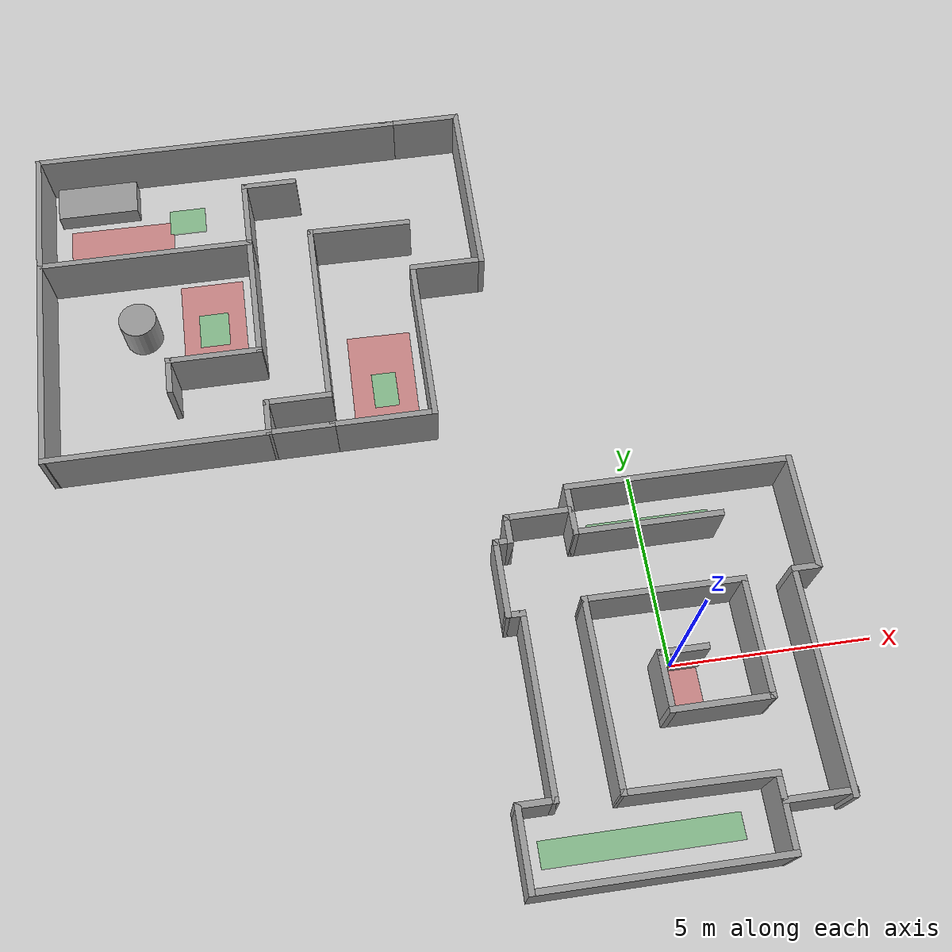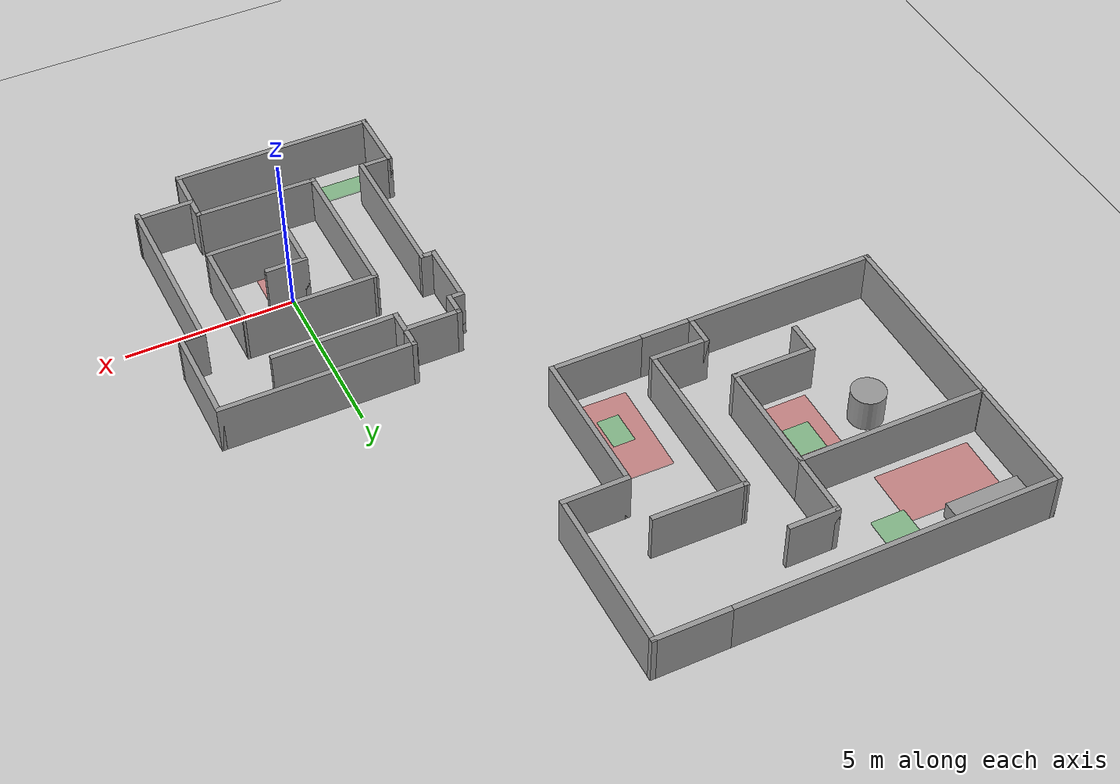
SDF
<sdf version="1.7">
 <world name="default">
  <model name="ground_plane">
   <static>1</static>
   <link name="link">
    <collision name="collision">
     <geometry><plane><normal>0 0 1</normal><size>100 100</size></plane></geometry>
     <surface>
      <contact><collide_bitmask>65535</collide_bitmask></contact>
      <friction><ode><mu>100</mu><mu2>50</mu2></ode></friction>
     </surface>
    </collision>
    <visual name="visual">
     <cast_shadows>0</cast_shadows>
     <geometry><plane><normal>0 0 1</normal><size>100 100</size></plane></geometry>
     <material>
      <script><uri>file://media/materials/scripts/gazebo.material</uri><name>Gazebo/Grey</name></script>
     </material>
    </visual>
   </link>
  </model>
  <model name="map_1">
   <stepLimit>500</stepLimit>
   <pose>-0.281 -0.221428 0 0 -0 0</pose>
   <link name="Wall_1">
    <collision name="Wall_1_Collision">
     <geometry><box><size>4.5 0.15 1.5</size></box></geometry>
     <pose>0 0 0.75 0 -0 0</pose>
    </collision>
    <visual name="Wall_1_Visual">
     <pose>0 0 0.75 0 -0 0</pose>
     <geometry><box><size>4.5 0.15 1.5</size></box></geometry>
     <material>
      <script><uri>file://media/materials/scripts/gazebo.material</uri><name>Gazebo/Grey</name></script>
      <ambient>1 1 1 1</ambient>
     </material>
     <meta><layer>0</layer></meta>
    </visual>
    <pose>-3.175 -0.599572 0 0 -0 1.5708</pose>
   </link>
   <link name="Wall_16">
    <collision name="Wall_16_Collision">
     <geometry><box><size>1.75 0.15 1.5</size></box></geometry>
     <pose>0 0 0.75 0 -0 0</pose>
    </collision>
    <visual name="Wall_16_Visual">
     <pose>0 0 0.75 0 -0 0</pose>
     <geometry><box><size>1.75 0.15 1.5</size></box></geometry>
     <material>
      <script><uri>file://media/materials/scripts/gazebo.material</uri><name>Gazebo/Grey</name></script>
      <ambient>1 1 1 1</ambient>
     </material>
     <meta><layer>0</layer></meta>
    </visual>
    <pose>2.645 -3.48157 0 0 -0 3.14159</pose>
   </link>
   <link name="Wall_2">
    <collision name="Wall_2_Collision">
     <geometry><box><size>0.5 0.15 1.5</size></box></geometry>
     <pose>0 0 0.75 0 -0 0</pose>
    </collision>
    <visual name="Wall_2_Visual">
     <pose>0 0 0.75 0 -0 0</pose>
     <geometry><box><size>0.5 0.15 1.5</size></box></geometry>
     <material>
      <script><uri>file://media/materials/scripts/gazebo.material</uri><name>Gazebo/Grey</name></script>
      <ambient>1 1 1 1</ambient>
     </material>
     <meta><layer>0</layer></meta>
    </visual>
    <pose>-3.35 1.57543 0 0 -0 3.14159</pose>
   </link>
   <link name="Wall_25">
    <collision name="Wall_25_Collision">
     <geometry><box><size>4.00007 0.15 1.5</size></box></geometry>
     <pose>0 0 0.75 0 -0 0</pose>
    </collision>
    <visual name="Wall_25_Visual">
     <pose>0 0 0.75 0 -0 0</pose>
     <geometry><box><size>4.00007 0.15 1.5</size></box></geometry>
     <material>
      <script><uri>file://media/materials/scripts/gazebo.material</uri><name>Gazebo/Grey</name></script>
      <ambient>1 1 1 1</ambient>
     </material>
     <meta><layer>0</layer></meta>
    </visual>
    <pose>0.249 1.70643 0 0 -0 -0.006234</pose>
   </link>
   <link name="Wall_26">
    <collision name="Wall_26_Collision">
     <geometry><box><size>3 0.15 1.5</size></box></geometry>
     <pose>0 0 0.75 0 -0 0</pose>
    </collision>
    <visual name="Wall_26_Visual">
     <pose>0 0 0.75 0 -0 0</pose>
     <geometry><box><size>3 0.15 1.5</size></box></geometry>
     <material>
      <script><uri>file://media/materials/scripts/gazebo.material</uri><name>Gazebo/Grey</name></script>
      <ambient>1 1 1 1</ambient>
     </material>
     <meta><layer>0</layer></meta>
    </visual>
    <pose>2.174 0.269428 0 0 -0 -1.5708</pose>
   </link>
   <link name="Wall_27">
    <collision name="Wall_27_Collision">
     <geometry><box><size>2.5 0.15 1.5</size></box></geometry>
     <pose>0 0 0.75 0 -0 0</pose>
    </collision>
    <visual name="Wall_27_Visual">
     <pose>0 0 0.75 0 -0 0</pose>
     <geometry><box><size>2.5 0.15 1.5</size></box></geometry>
     <material>
      <script><uri>file://media/materials/scripts/gazebo.material</uri><name>Gazebo/Grey</name></script>
      <ambient>1 1 1 1</ambient>
     </material>
     <meta><layer>0</layer></meta>
    </visual>
    <pose>0.999 -1.15557 0 0 -0 3.14159</pose>
   </link>
   <link name="Wall_3">
    <collision name="Wall_3_Collision">
     <geometry><box><size>2 0.15 1.5</size></box></geometry>
     <pose>0 0 0.75 0 -0 0</pose>
    </collision>
    <visual name="Wall_3_Visual">
     <pose>0 0 0.75 0 -0 0</pose>
     <geometry><box><size>2 0.15 1.5</size></box></geometry>
     <material>
      <script><uri>file://media/materials/scripts/gazebo.material</uri><name>Gazebo/Grey</name></script>
      <ambient>1 1 1 1</ambient>
     </material>
     <meta><layer>0</layer></meta>
    </visual>
    <pose>-3.525 2.50043 0 0 -0 1.5708</pose>
   </link>
   <link name="Wall_31">
    <collision name="Wall_31_Collision">
     <geometry><box><size>3.64467 0.15 1.5</size></box></geometry>
     <pose>0 0 0.75 0 -0 0</pose>
    </collision>
    <visual name="Wall_31_Visual">
     <pose>0 0 0.75 0 -0 0</pose>
     <geometry><box><size>3.64467 0.15 1.5</size></box></geometry>
     <material>
      <script><uri>file://media/materials/scripts/gazebo.material</uri><name>Gazebo/Grey</name></script>
      <ambient>1 1 1 1</ambient>
     </material>
     <meta><layer>0</layer></meta>
    </visual>
    <pose>0.0975 -2.85407 0 0 -0 -0.015735</pose>
   </link>
   <link name="Wall_33">
    <collision name="Wall_33_Collision">
     <geometry><box><size>1 0.15 1.5</size></box></geometry>
     <pose>0 0 0.75 0 -0 0</pose>
    </collision>
    <visual name="Wall_33_Visual">
     <pose>0 0 0.75 0 -0 0</pose>
     <geometry><box><size>1 0.15 1.5</size></box></geometry>
     <material>
      <script><uri>file://media/materials/scripts/gazebo.material</uri><name>Gazebo/Grey</name></script>
      <ambient>1 1 1 1</ambient>
     </material>
     <meta><layer>0</layer></meta>
    </visual>
    <pose>-3.6 -2.77457 0 0 -0 3.14159</pose>
   </link>
   <link name="Wall_34">
    <collision name="Wall_34_Collision">
     <geometry><box><size>2 0.15 1.5</size></box></geometry>
     <pose>0 0 0.75 0 -0 0</pose>
    </collision>
    <visual name="Wall_34_Visual">
     <pose>0 0 0.75 0 -0 0</pose>
     <geometry><box><size>2 0.15 1.5</size></box></geometry>
     <material>
      <script><uri>file://media/materials/scripts/gazebo.material</uri><name>Gazebo/Grey</name></script>
      <ambient>1 1 1 1</ambient>
     </material>
     <meta><layer>0</layer></meta>
    </visual>
    <pose>-4.025 -3.69957 0 0 -0 -1.5708</pose>
   </link>
   <link name="Wall_35">
    <collision name="Wall_35_Collision">
     <geometry><box><size>6 0.15 1.5</size></box></geometry>
     <pose>0 0 0.75 0 -0 0</pose>
    </collision>
    <visual name="Wall_35_Visual">
     <pose>0 0 0.75 0 -0 0</pose>
     <geometry><box><size>6 0.15 1.5</size></box></geometry>
     <material>
      <script><uri>file://media/materials/scripts/gazebo.material</uri><name>Gazebo/Grey</name></script>
      <ambient>1 1 1 1</ambient>
     </material>
     <meta><layer>0</layer></meta>
    </visual>
    <pose>-1.1 -4.62457 0 0 -0 0</pose>
   </link>
   <link name="Wall_4">
    <collision name="Wall_4_Collision">
     <geometry><box><size>0.5 0.15 1.5</size></box></geometry>
     <pose>0 0 0.75 0 -0 0</pose>
    </collision>
    <visual name="Wall_4_Visual">
     <pose>0 0 0.75 0 -0 0</pose>
     <geometry><box><size>0.5 0.15 1.5</size></box></geometry>
     <material>
      <script><uri>file://media/materials/scripts/gazebo.material</uri><name>Gazebo/Grey</name></script>
      <ambient>1 1 1 1</ambient>
     </material>
     <meta><layer>0</layer></meta>
    </visual>
    <pose>-3.35 3.42543 0 0 -0 0</pose>
   </link>
   <link name="Wall_43">
    <collision name="Wall_43_Collision">
     <geometry><box><size>1.5 0.15 1.5</size></box></geometry>
     <pose>0 0 0.75 0 -0 0</pose>
    </collision>
    <visual name="Wall_43_Visual">
     <pose>0 0 0.75 0 -0 0</pose>
     <geometry><box><size>1.5 0.15 1.5</size></box></geometry>
     <material>
      <script><uri>file://media/materials/scripts/gazebo.material</uri><name>Gazebo/Grey</name></script>
      <ambient>1 1 1 1</ambient>
     </material>
     <meta><layer>0</layer></meta>
    </visual>
    <pose>-0.176 -0.480572 0 0 -0 1.5708</pose>
   </link>
   <link name="Wall_44">
    <collision name="Wall_44_Collision">
     <geometry><box><size>1.25 0.15 1.5</size></box></geometry>
     <pose>0 0 0.75 0 -0 0</pose>
    </collision>
    <visual name="Wall_44_Visual">
     <pose>0 0 0.75 0 -0 0</pose>
     <geometry><box><size>1.25 0.15 1.5</size></box></geometry>
     <material>
      <script><uri>file://media/materials/scripts/gazebo.material</uri><name>Gazebo/Grey</name></script>
      <ambient>1 1 1 1</ambient>
     </material>
     <meta><layer>0</layer></meta>
    </visual>
    <pose>0.374 0.194428 0 0 -0 0</pose>
   </link>
   <link name="Wall_49">
    <collision name="Wall_49_Collision">
     <geometry><box><size>4.69527 0.15 1.5</size></box></geometry>
     <pose>0 0 0.75 0 -0 0</pose>
    </collision>
    <visual name="Wall_49_Visual">
     <pose>0 0 0.75 0 -0 0</pose>
     <geometry><box><size>4.69527 0.15 1.5</size></box></geometry>
     <material>
      <script><uri>file://media/materials/scripts/gazebo.material</uri><name>Gazebo/Grey</name></script>
      <ambient>1 1 1 1</ambient>
     </material>
     <meta><layer>0</layer></meta>
    </visual>
    <pose>-1.663 -0.554072 0 0 -0 1.57652</pose>
   </link>
   <link name="Wall_5">
    <collision name="Wall_5_Collision">
     <geometry><box><size>0.75 0.15 1.5</size></box></geometry>
     <pose>0 0 0.75 0 -0 0</pose>
    </collision>
    <visual name="Wall_5_Visual">
     <pose>0 0 0.75 0 -0 0</pose>
     <geometry><box><size>0.75 0.15 1.5</size></box></geometry>
     <material>
      <script><uri>file://media/materials/scripts/gazebo.material</uri><name>Gazebo/Grey</name></script>
      <ambient>1 1 1 1</ambient>
     </material>
     <meta><layer>0</layer></meta>
    </visual>
    <pose>-3.175 3.72543 0 0 -0 1.5708</pose>
   </link>
   <link name="Wall_51">
    <collision name="Wall_51_Collision">
     <geometry><box><size>3.75 0.15 1.5</size></box></geometry>
     <pose>0 0 0.75 0 -0 0</pose>
    </collision>
    <visual name="Wall_51_Visual">
     <pose>0 0 0.75 0 -0 0</pose>
     <geometry><box><size>3.75 0.15 1.5</size></box></geometry>
     <material>
      <script><uri>file://media/materials/scripts/gazebo.material</uri><name>Gazebo/Grey</name></script>
      <ambient>1 1 1 1</ambient>
     </material>
     <meta><layer>0</layer></meta>
    </visual>
    <pose>0.225 3.42543 0 0 -0 0</pose>
   </link>
   <link name="Wall_57">
    <collision name="Wall_57_Collision">
     <geometry><box><size>0.75 0.15 1.5</size></box></geometry>
     <pose>0 0 0.75 0 -0 0</pose>
    </collision>
    <visual name="Wall_57_Visual">
     <pose>0 0 0.75 0 -0 0</pose>
     <geometry><box><size>0.75 0.15 1.5</size></box></geometry>
     <material>
      <script><uri>file://media/materials/scripts/gazebo.material</uri><name>Gazebo/Grey</name></script>
      <ambient>1 1 1 1</ambient>
     </material>
     <meta><layer>0</layer></meta>
    </visual>
    <pose>-1.575 4.32543 0 0 -0 1.5708</pose>
   </link>
   <link name="Wall_6">
    <collision name="Wall_6_Collision">
     <geometry><box><size>1.75 0.15 1.5</size></box></geometry>
     <pose>0 0 0.75 0 -0 0</pose>
    </collision>
    <visual name="Wall_6_Visual">
     <pose>0 0 0.75 0 -0 0</pose>
     <geometry><box><size>1.75 0.15 1.5</size></box></geometry>
     <material>
      <script><uri>file://media/materials/scripts/gazebo.material</uri><name>Gazebo/Grey</name></script>
      <ambient>1 1 1 1</ambient>
     </material>
     <meta><layer>0</layer></meta>
    </visual>
    <pose>-2.375 4.02543 0 0 -0 0</pose>
   </link>
   <link name="Wall_62">
    <collision name="Wall_62_Collision">
     <geometry><box><size>5.75 0.15 1.5</size></box></geometry>
     <pose>0 0 0.75 0 -0 0</pose>
    </collision>
    <visual name="Wall_62_Visual">
     <pose>0 0 0.75 0 -0 0</pose>
     <geometry><box><size>5.75 0.15 1.5</size></box></geometry>
     <material>
      <script><uri>file://media/materials/scripts/gazebo.material</uri><name>Gazebo/Grey</name></script>
      <ambient>1 1 1 1</ambient>
     </material>
     <meta><layer>0</layer></meta>
    </visual>
    <pose>1.225 4.62543 0 0 -0 0</pose>
   </link>
   <link name="Wall_63">
    <collision name="Wall_63_Collision">
     <geometry><box><size>3 0.15 1.5</size></box></geometry>
     <pose>0 0 0.75 0 -0 0</pose>
    </collision>
    <visual name="Wall_63_Visual">
     <pose>0 0 0.75 0 -0 0</pose>
     <geometry><box><size>3 0.15 1.5</size></box></geometry>
     <material>
      <script><uri>file://media/materials/scripts/gazebo.material</uri><name>Gazebo/Grey</name></script>
      <ambient>1 1 1 1</ambient>
     </material>
     <meta><layer>0</layer></meta>
    </visual>
    <pose>4.025 3.20043 0 0 -0 -1.5708</pose>
   </link>
   <link name="Wall_67">
    <collision name="Wall_67_Collision">
     <geometry><box><size>0.75 0.15 1.5</size></box></geometry>
     <pose>0 0 0.75 0 -0 0</pose>
    </collision>
    <visual name="Wall_67_Visual">
     <pose>0 0 0.75 0 -0 0</pose>
     <geometry><box><size>0.75 0.15 1.5</size></box></geometry>
     <material>
      <script><uri>file://media/materials/scripts/gazebo.material</uri><name>Gazebo/Grey</name></script>
      <ambient>1 1 1 1</ambient>
     </material>
     <meta><layer>0</layer></meta>
    </visual>
    <pose>3.725 1.77543 0 0 -0 3.14159</pose>
   </link>
   <link name="Wall_68">
    <collision name="Wall_68_Collision">
     <geometry><box><size>5.5 0.15 1.5</size></box></geometry>
     <pose>0 0 0.75 0 -0 0</pose>
    </collision>
    <visual name="Wall_68_Visual">
     <pose>0 0 0.75 0 -0 0</pose>
     <geometry><box><size>5.5 0.15 1.5</size></box></geometry>
     <material>
      <script><uri>file://media/materials/scripts/gazebo.material</uri><name>Gazebo/Grey</name></script>
      <ambient>1 1 1 1</ambient>
     </material>
     <meta><layer>0</layer></meta>
    </visual>
    <pose>3.425 -0.899572 0 0 -0 -1.5708</pose>
   </link>
   <link name="Wall_7">
    <collision name="Wall_7_Collision">
     <geometry><box><size>0.75 0.15 1.5</size></box></geometry>
     <pose>0 0 0.75 0 -0 0</pose>
    </collision>
    <visual name="Wall_7_Visual">
     <pose>0 0 0.75 0 -0 0</pose>
     <geometry><box><size>0.75 0.15 1.5</size></box></geometry>
     <material>
      <script><uri>file://media/materials/scripts/gazebo.material</uri><name>Gazebo/Grey</name></script>
      <ambient>1 1 1 1</ambient>
     </material>
     <meta><layer>0</layer></meta>
    </visual>
    <pose>-1.575 3.72543 0 0 -0 -1.5708</pose>
   </link>
   <link name="Wall_73">
    <collision name="Wall_73_Collision">
     <geometry><box><size>1.89312 0.15 1.5</size></box></geometry>
     <pose>0 0 0.75 0 -0 0</pose>
    </collision>
    <visual name="Wall_73_Visual">
     <pose>0 0 0.75 0 -0 0</pose>
     <geometry><box><size>1.89312 0.15 1.5</size></box></geometry>
     <material>
      <script><uri>file://media/materials/scripts/gazebo.material</uri><name>Gazebo/Grey</name></script>
      <ambient>1 1 1 1</ambient>
     </material>
     <meta><layer>0</layer></meta>
    </visual>
    <pose>1.835 -3.75307 0 0 -0 -1.58227</pose>
   </link>
   <static>1</static>
  </model>
  <model name="map_1_spawn">
   <link name="spawn_1_a">
    <inertial>
     <mass>0.142312</mass>
     <inertia>
      <ixx>0.00473908</ixx>
      <ixy>0</ixy>
      <ixz>0</ixz>
      <iyy>0.271176</iyy>
      <iyz>0</iyz>
      <izz>0.275862</izz>
     </inertia>
    </inertial>
    <pose>-0.871908 -3.85609 0 0 -0 0</pose>
    <gravity>0</gravity>
    <visual name="visual">
     <geometry><box><size>4.78162 0.630375 0.047285</size></box></geometry>
     <material>
      <lighting>1</lighting>
      <script><uri>file://media/materials/scripts/gazebo.material</uri><name>Gazebo/Green</name></script>
      <shader type="pixel"><normal_map>__default__</normal_map></shader>
      <ambient>0 1 0 1</ambient>
      <diffuse>0 1 0 1</diffuse>
      <specular>0.1 0.1 0.1 1</specular>
      <emissive>0 0 0 1</emissive>
     </material>
     <transparency>0.6</transparency>
    </visual>
   </link>
   <link name="spawn_1_b">
    <spawnThreshold>15%</spawnThreshold>
    <inertial>
     <mass>0.142312</mass>
     <inertia>
      <ixx>0.00473908</ixx>
      <ixy>0</ixy>
      <ixz>0</ixz>
      <iyy>0.271176</iyy>
      <iyz>0</iyz>
      <izz>0.275862</izz>
     </inertia>
    </inertial>
    <pose>0.871907 3.85609 0 0 -0 0</pose>
    <gravity>0</gravity>
    <visual name="visual">
     <geometry><box><size>3.15894 0.222869 0.047285</size></box></geometry>
     <material>
      <lighting>1</lighting>
      <script><uri>file://media/materials/scripts/gazebo.material</uri><name>Gazebo/Green</name></script>
      <shader type="pixel"><normal_map>__default__</normal_map></shader>
      <ambient>0 1 0 1</ambient>
      <diffuse>0 1 0 1</diffuse>
      <specular>0.1 0.1 0.1 1</specular>
      <emissive>0 0 0 1</emissive>
     </material>
     <transparency>0.6</transparency>
    </visual>
   </link>
   <static>1</static>
   <pose>-0.620352 -0.06954 0 0 -0 0</pose>
  </model>
  <model name="map_1_target">
   <link name="target_1">
    <inertial>
     <mass>0.0166533</mass>
     <inertia>
      <ixx>0.00184915</ixx>
      <ixy>0</ixy>
      <ixz>0</ixz>
      <iyy>0.00125521</iyy>
      <iyz>0</iyz>
      <izz>0.00310372</izz>
     </inertia>
    </inertial>
    <gravity>0</gravity>
    <visual name="visual">
     <geometry><box><size>0.95092 1.15422 0.015138</size></box></geometry>
     <material>
      <lighting>1</lighting>
      <script><uri>file://media/materials/scripts/gazebo.material</uri><name>Gazebo/Red</name></script>
      <shader type="pixel"><normal_map>__default__</normal_map></shader>
      <ambient>1 0 0 1</ambient>
      <diffuse>1 0 0 1</diffuse>
      <specular>0.1 0.1 0.1 1</specular>
      <emissive>0 0 0 1</emissive>
     </material>
     <transparency>0.6</transparency>
    </visual>
   </link>
   <static>1</static>
   <pose>0.147086 -0.699277 0.010111 0 -0 0</pose>
  </model>
  <model name="map_3">
   <stepLimit>500</stepLimit>
   <pose>-8.77341 11.5095 0 0 -0 0</pose>
   <link name="Wall_11">
    <collision name="Wall_11_Collision">
     <geometry><box><size>2.75 0.15 1.5</size></box></geometry>
     <pose>0 0 0.75 0 -0 0</pose>
    </collision>
    <visual name="Wall_11_Visual">
     <pose>0 0 0.75 0 -0 0</pose>
     <geometry><box><size>2.75 0.15 1.5</size></box></geometry>
     <material>
      <script><uri>file://media/materials/scripts/gazebo.material</uri><name>Gazebo/Grey</name></script>
      <ambient>1 1 1 1</ambient>
     </material>
     <meta><layer>0</layer></meta>
    </visual>
    <pose>2.70007 -4.58987 0 0 -0 3.14159</pose>
   </link>
   <link name="Wall_19">
    <collision name="Wall_19_Collision">
     <geometry><box><size>3.5 0.15 1.5</size></box></geometry>
     <pose>0 0 0.75 0 -0 0</pose>
    </collision>
    <visual name="Wall_19_Visual">
     <pose>0 0 0.75 0 -0 0</pose>
     <geometry><box><size>3.5 0.15 1.5</size></box></geometry>
     <material>
      <script><uri>file://media/materials/scripts/gazebo.material</uri><name>Gazebo/Grey</name></script>
      <ambient>1 1 1 1</ambient>
     </material>
     <meta><layer>0</layer></meta>
    </visual>
    <pose>-0.24993 -0.510867 0 0 -0 -1.5708</pose>
   </link>
   <link name="Wall_2">
    <collision name="Wall_2_Collision">
     <geometry><box><size>3.5 0.15 1.5</size></box></geometry>
     <pose>0 0 0.75 0 -0 0</pose>
    </collision>
    <visual name="Wall_2_Visual">
     <pose>0 0 0.75 0 -0 0</pose>
     <geometry><box><size>3.5 0.15 1.5</size></box></geometry>
     <material>
      <script><uri>file://media/materials/scripts/gazebo.material</uri><name>Gazebo/Grey</name></script>
      <ambient>1 1 1 1</ambient>
     </material>
     <meta><layer>0</layer></meta>
    </visual>
    <pose>-5.84993 2.93513 0 0 -0 -1.5708</pose>
   </link>
   <link name="Wall_20">
    <collision name="Wall_20_Collision">
     <geometry><box><size>2.5 0.15 1.5</size></box></geometry>
     <pose>0 0 0.75 0 -0 0</pose>
    </collision>
    <visual name="Wall_20_Visual">
     <pose>0 0 0.75 0 -0 0</pose>
     <geometry><box><size>2.5 0.15 1.5</size></box></geometry>
     <material>
      <script><uri>file://media/materials/scripts/gazebo.material</uri><name>Gazebo/Grey</name></script>
      <ambient>1 1 1 1</ambient>
     </material>
     <meta><layer>0</layer></meta>
    </visual>
    <pose>-1.42493 -2.18587 0 0 -0 3.14159</pose>
   </link>
   <link name="Wall_21">
    <collision name="Wall_21_Collision">
     <geometry><box><size>1 0.15 1.5</size></box></geometry>
     <pose>0 0 0.75 0 -0 0</pose>
    </collision>
    <visual name="Wall_21_Visual">
     <pose>0 0 0.75 0 -0 0</pose>
     <geometry><box><size>1 0.15 1.5</size></box></geometry>
     <material>
      <script><uri>file://media/materials/scripts/gazebo.material</uri><name>Gazebo/Grey</name></script>
      <ambient>1 1 1 1</ambient>
     </material>
     <meta><layer>0</layer></meta>
    </visual>
    <pose>-2.59993 -2.61087 0 0 -0 -1.5708</pose>
   </link>
   <link name="Wall_23">
    <collision name="Wall_23_Collision">
     <geometry><box><size>1.75 0.15 1.5</size></box></geometry>
     <pose>0 0 0.75 0 -0 0</pose>
    </collision>
    <visual name="Wall_23_Visual">
     <pose>0 0 0.75 0 -0 0</pose>
     <geometry><box><size>1.75 0.15 1.5</size></box></geometry>
     <material>
      <script><uri>file://media/materials/scripts/gazebo.material</uri><name>Gazebo/Grey</name></script>
      <ambient>1 1 1 1</ambient>
     </material>
     <meta><layer>0</layer></meta>
    </visual>
    <pose>0.60007 -4.58987 0 0 -0 3.14159</pose>
   </link>
   <link name="Wall_24">
    <collision name="Wall_24_Collision">
     <geometry><box><size>1 0.15 1.5</size></box></geometry>
     <pose>0 0 0.75 0 -0 0</pose>
    </collision>
    <visual name="Wall_24_Visual">
     <pose>0 0 0.75 0 -0 0</pose>
     <geometry><box><size>1 0.15 1.5</size></box></geometry>
     <material>
      <script><uri>file://media/materials/scripts/gazebo.material</uri><name>Gazebo/Grey</name></script>
      <ambient>1 1 1 1</ambient>
     </material>
     <meta><layer>0</layer></meta>
    </visual>
    <pose>-0.19993 -4.16487 0 0 -0 1.5708</pose>
   </link>
   <link name="Wall_25">
    <collision name="Wall_25_Collision">
     <geometry><box><size>1.75 0.15 1.5</size></box></geometry>
     <pose>0 0 0.75 0 -0 0</pose>
    </collision>
    <visual name="Wall_25_Visual">
     <pose>0 0 0.75 0 -0 0</pose>
     <geometry><box><size>1.75 0.15 1.5</size></box></geometry>
     <material>
      <script><uri>file://media/materials/scripts/gazebo.material</uri><name>Gazebo/Grey</name></script>
      <ambient>1 1 1 1</ambient>
     </material>
     <meta><layer>0</layer></meta>
    </visual>
    <pose>0.60007 -3.73987 0 0 -0 0</pose>
   </link>
   <link name="Wall_32">
    <collision name="Wall_32_Collision">
     <geometry><box><size>5.78927 0.15 1.5</size></box></geometry>
     <pose>0 0 0.75 0 -0 0</pose>
    </collision>
    <visual name="Wall_32_Visual">
     <pose>0 0 0.75 0 -0 0</pose>
     <geometry><box><size>5.78927 0.15 1.5</size></box></geometry>
     <material>
      <script><uri>file://media/materials/scripts/gazebo.material</uri><name>Gazebo/Grey</name></script>
      <ambient>1 1 1 1</ambient>
     </material>
     <meta><layer>0</layer></meta>
    </visual>
    <pose>-3.01943 -4.59987 0 0 -0 -3.13805</pose>
   </link>
   <link name="Wall_33">
    <collision name="Wall_33_Collision">
     <geometry><box><size>6.0198 0.15 1.5</size></box></geometry>
     <pose>0 0 0.75 0 -0 0</pose>
    </collision>
    <visual name="Wall_33_Visual">
     <pose>0 0 0.75 0 -0 0</pose>
     <geometry><box><size>6.0198 0.15 1.5</size></box></geometry>
     <material>
      <script><uri>file://media/materials/scripts/gazebo.material</uri><name>Gazebo/Grey</name></script>
      <ambient>1 1 1 1</ambient>
     </material>
     <meta><layer>0</layer></meta>
    </visual>
    <pose>-5.84443 -1.67487 0 0 -0 1.57267</pose>
   </link>
   <link name="Wall_35">
    <collision name="Wall_35_Collision">
     <geometry><box><size>5.74976 0.15 1.5</size></box></geometry>
     <pose>0 0 0.75 0 -0 0</pose>
    </collision>
    <visual name="Wall_35_Visual">
     <pose>0 0 0.75 0 -0 0</pose>
     <geometry><box><size>5.74976 0.15 1.5</size></box></geometry>
     <material>
      <script><uri>file://media/materials/scripts/gazebo.material</uri><name>Gazebo/Grey</name></script>
      <ambient>1 1 1 1</ambient>
     </material>
     <meta><layer>0</layer></meta>
    </visual>
    <pose>-3.04993 1.16413 0 0 -0 3.14159</pose>
   </link>
   <link name="Wall_38">
    <collision name="Wall_38_Collision">
     <geometry><box><size>2 0.15 1.5</size></box></geometry>
     <pose>0 0 0.75 0 -0 0</pose>
    </collision>
    <visual name="Wall_38_Visual">
     <pose>0 0 0.75 0 -0 0</pose>
     <geometry><box><size>2 0.15 1.5</size></box></geometry>
     <material>
      <script><uri>file://media/materials/scripts/gazebo.material</uri><name>Gazebo/Grey</name></script>
      <ambient>1 1 1 1</ambient>
     </material>
     <meta><layer>0</layer></meta>
    </visual>
    <pose>-0.24993 2.08913 0 0 -0 1.5708</pose>
   </link>
   <link name="Wall_39">
    <collision name="Wall_39_Collision">
     <geometry><box><size>1.5 0.15 1.5</size></box></geometry>
     <pose>0 0 0.75 0 -0 0</pose>
    </collision>
    <visual name="Wall_39_Visual">
     <pose>0 0 0.75 0 -0 0</pose>
     <geometry><box><size>1.5 0.15 1.5</size></box></geometry>
     <material>
      <script><uri>file://media/materials/scripts/gazebo.material</uri><name>Gazebo/Grey</name></script>
      <ambient>1 1 1 1</ambient>
     </material>
     <meta><layer>0</layer></meta>
    </visual>
    <pose>0.42507 3.01413 0 0 -0 0</pose>
   </link>
   <link name="Wall_41">
    <collision name="Wall_41_Collision">
     <geometry><box><size>10 0.15 1.5</size></box></geometry>
     <pose>0 0 0.75 0 -0 0</pose>
    </collision>
    <visual name="Wall_41_Visual">
     <pose>0 0 0.75 0 -0 0</pose>
     <geometry><box><size>10 0.15 1.5</size></box></geometry>
     <material>
      <script><uri>file://media/materials/scripts/gazebo.material</uri><name>Gazebo/Grey</name></script>
      <ambient>1 1 1 1</ambient>
     </material>
     <meta><layer>0</layer></meta>
    </visual>
    <pose>-0.92493 4.61013 0 0 -0 0</pose>
   </link>
   <link name="Wall_45">
    <collision name="Wall_45_Collision">
     <geometry><box><size>4.5 0.15 1.5</size></box></geometry>
     <pose>0 0 0.75 0 -0 0</pose>
    </collision>
    <visual name="Wall_45_Visual">
     <pose>0 0 0.75 0 -0 0</pose>
     <geometry><box><size>4.5 0.15 1.5</size></box></geometry>
     <material>
      <script><uri>file://media/materials/scripts/gazebo.material</uri><name>Gazebo/Grey</name></script>
      <ambient>1 1 1 1</ambient>
     </material>
     <meta><layer>0</layer></meta>
    </visual>
    <pose>4.00007 -2.41487 0 0 -0 1.5708</pose>
   </link>
   <link name="Wall_48">
    <collision name="Wall_48_Collision">
     <geometry><box><size>2 0.15 1.5</size></box></geometry>
     <pose>0 0 0.75 0 -0 0</pose>
    </collision>
    <visual name="Wall_48_Visual">
     <pose>0 0 0.75 0 -0 0</pose>
     <geometry><box><size>2 0.15 1.5</size></box></geometry>
     <material>
      <script><uri>file://media/materials/scripts/gazebo.material</uri><name>Gazebo/Grey</name></script>
      <ambient>1 1 1 1</ambient>
     </material>
     <meta><layer>0</layer></meta>
    </visual>
    <pose>4.92507 -0.239867 0 0 -0 0</pose>
   </link>
   <link name="Wall_49">
    <collision name="Wall_49_Collision">
     <geometry><box><size>5 0.15 1.5</size></box></geometry>
     <pose>0 0 0.75 0 -0 0</pose>
    </collision>
    <visual name="Wall_49_Visual">
     <pose>0 0 0.75 0 -0 0</pose>
     <geometry><box><size>5 0.15 1.5</size></box></geometry>
     <material>
      <script><uri>file://media/materials/scripts/gazebo.material</uri><name>Gazebo/Grey</name></script>
      <ambient>1 1 1 1</ambient>
     </material>
     <meta><layer>0</layer></meta>
    </visual>
    <pose>5.85007 2.18513 0 0 -0 1.5708</pose>
   </link>
   <link name="Wall_50">
    <collision name="Wall_50_Collision">
     <geometry><box><size>2.25 0.15 1.5</size></box></geometry>
     <pose>0 0 0.75 0 -0 0</pose>
    </collision>
    <visual name="Wall_50_Visual">
     <pose>0 0 0.75 0 -0 0</pose>
     <geometry><box><size>2.25 0.15 1.5</size></box></geometry>
     <material>
      <script><uri>file://media/materials/scripts/gazebo.material</uri><name>Gazebo/Grey</name></script>
      <ambient>1 1 1 1</ambient>
     </material>
     <meta><layer>0</layer></meta>
    </visual>
    <pose>4.80007 4.61013 0 0 -0 3.14159</pose>
   </link>
   <link name="Wall_52">
    <collision name="Wall_52_Collision">
     <geometry><box><size>5 0.15 1.5</size></box></geometry>
     <pose>0 0 0.75 0 -0 0</pose>
    </collision>
    <visual name="Wall_52_Visual">
     <pose>0 0 0.75 0 -0 0</pose>
     <geometry><box><size>5 0.15 1.5</size></box></geometry>
     <material>
      <script><uri>file://media/materials/scripts/gazebo.material</uri><name>Gazebo/Grey</name></script>
      <ambient>1 1 1 1</ambient>
     </material>
     <meta><layer>0</layer></meta>
    </visual>
    <pose>1.40007 -1.16487 0 0 -0 -1.5708</pose>
   </link>
   <link name="Wall_6">
    <collision name="Wall_6_Collision">
     <geometry><box><size>2.78267 0.15 1.5</size></box></geometry>
     <pose>0 0 0.75 0 -0 0</pose>
    </collision>
    <visual name="Wall_6_Visual">
     <pose>0 0 0.75 0 -0 0</pose>
     <geometry><box><size>2.78267 0.15 1.5</size></box></geometry>
     <material>
      <script><uri>file://media/materials/scripts/gazebo.material</uri><name>Gazebo/Grey</name></script>
      <ambient>1 1 1 1</ambient>
     </material>
     <meta><layer>0</layer></meta>
    </visual>
    <pose>2.71657 1.24413 0 0 -0 3.12944</pose>
   </link>
   <static>1</static>
  </model>
  <model name="map_3_obstacles">
   <link name="link_0">
    <inertial>
     <mass>1</mass>
     <inertia><ixx>0.145833</ixx><ixy>0</ixy><ixz>0</ixz><iyy>0.145833</iyy><iyz>0</iyz><izz>0.125</izz></inertia>
    </inertial>
    <pose>0.519084 -2.21471 0.126582 0 -0 0</pose>
    <visual name="visual">
     <geometry><cylinder><radius>0.5</radius><length>1</length></cylinder></geometry>
     <material>
      <lighting>1</lighting>
      <script><uri>file://media/materials/scripts/gazebo.material</uri><name>Gazebo/Grey</name></script>
      <shader type="pixel"/>
     </material>
    </visual>
    <collision name="collision">
     <geometry><cylinder><radius>0.5</radius><length>1</length></cylinder></geometry>
     <surface>
      <friction>
       <ode><mu>1</mu><mu2>1</mu2><fdir1>0 0 0</fdir1><slip1>0</slip1><slip2>0</slip2></ode>
       <torsional>
        <coefficient>1</coefficient>
        <patch_radius>0</patch_radius>
        <surface_radius>0</surface_radius>
        <use_patch_radius>1</use_patch_radius>
        <ode><slip>0</slip></ode>
       </torsional>
      </friction>
      <bounce><restitution_coefficient>0</restitution_coefficient><threshold>1e+06</threshold></bounce>
      <contact>
       <collide_without_contact>0</collide_without_contact>
       <collide_without_contact_bitmask>1</collide_without_contact_bitmask>
       <collide_bitmask>1</collide_bitmask>
       <ode>
        <soft_cfm>0</soft_cfm>
        <soft_erp>0.2</soft_erp>
        <kp>1e+13</kp>
        <kd>1</kd>
        <max_vel>0.01</max_vel>
        <min_depth>0</min_depth>
       </ode>
       <bullet>
        <split_impulse>1</split_impulse>
        <split_impulse_penetration_threshold>-0.01</split_impulse_penetration_threshold>
        <soft_cfm>0</soft_cfm>
        <soft_erp>0.2</soft_erp>
        <kp>1e+13</kp>
        <kd>1</kd>
       </bullet>
      </contact>
     </surface>
    </collision>
   </link>
   <link name="link_1">
    <inertial>
     <mass>1.06342</mass>
     <inertia>
      <ixx>0.109527</ixx>
      <ixy>0</ixy>
      <ixz>0</ixz>
      <iyy>0.445677</iyy>
      <iyz>0</iyz>
      <izz>0.513388</izz>
     </inertia>
    </inertial>
    <pose>-0.51909 2.21471 -0.126581 0 -0 0</pose>
    <visual name="visual">
     <geometry><box><size>2.18934 1 0.485727</size></box></geometry>
     <material>
      <lighting>1</lighting>
      <script><uri>file://media/materials/scripts/gazebo.material</uri><name>Gazebo/Grey</name></script>
      <shader type="pixel"/>
     </material>
    </visual>
    <collision name="collision">
     <geometry><box><size>2.18934 1 0.485727</size></box></geometry>
     <surface>
      <friction>
       <ode><mu>1</mu><mu2>1</mu2><fdir1>0 0 0</fdir1><slip1>0</slip1><slip2>0</slip2></ode>
       <torsional>
        <coefficient>1</coefficient>
        <patch_radius>0</patch_radius>
        <surface_radius>0</surface_radius>
        <use_patch_radius>1</use_patch_radius>
        <ode><slip>0</slip></ode>
       </torsional>
      </friction>
      <bounce><restitution_coefficient>0</restitution_coefficient><threshold>1e+06</threshold></bounce>
      <contact>
       <collide_without_contact>0</collide_without_contact>
       <collide_without_contact_bitmask>1</collide_without_contact_bitmask>
       <collide_bitmask>1</collide_bitmask>
       <ode>
        <soft_cfm>0</soft_cfm>
        <soft_erp>0.2</soft_erp>
        <kp>1e+13</kp>
        <kd>1</kd>
        <max_vel>0.01</max_vel>
        <min_depth>0</min_depth>
       </ode>
       <bullet>
        <split_impulse>1</split_impulse>
        <split_impulse_penetration_threshold>-0.01</split_impulse_penetration_threshold>
        <soft_cfm>0</soft_cfm>
        <soft_erp>0.2</soft_erp>
        <kp>1e+13</kp>
        <kd>1</kd>
       </bullet>
      </contact>
     </surface>
    </collision>
   </link>
   <static>1</static>
   <pose>-12.7202 13.1948 0.370648 0 -0 0</pose>
  </model>
  <model name="map_3_spawn">
   <link name="spawn_1">
    <inertial>
     <mass>0.0482755</mass>
     <inertia>
      <ixx>0.00403233</ixx>
      <ixy>0</ixy>
      <ixz>0</ixz>
      <iyy>0.00403233</iyy>
      <iyz>0</iyz>
      <izz>0.00804592</izz>
     </inertia>
    </inertial>
    <pose>-1.28906 -0.405308 -0 0 -0 0</pose>
    <visual name="visual">
     <geometry><box><size>0.797702 1 0.048273</size></box></geometry>
     <material>
      <lighting>1</lighting>
      <script><uri>file://media/materials/scripts/gazebo.material</uri><name>Gazebo/Green</name></script>
      <shader type="pixel"><normal_map>__default__</normal_map></shader>
      <ambient>0 1 0 1</ambient>
      <diffuse>0 1 0 1</diffuse>
      <specular>0.1 0.1 0.1 1</specular>
      <emissive>0 0 0 1</emissive>
     </material>
     <transparency>0.6</transparency>
    </visual>
   </link>
   <link name="spawn_2">
    <inertial>
     <mass>0.0482755</mass>
     <inertia>
      <ixx>0.00403233</ixx>
      <ixy>0</ixy>
      <ixz>0</ixz>
      <iyy>0.00403233</iyy>
      <iyz>0</iyz>
      <izz>0.00804592</izz>
     </inertia>
    </inertial>
    <pose>-1.81485 3.29891 -0 0 -0 0</pose>
    <visual name="visual">
     <geometry><box><size>1 0.782452 0.048273</size></box></geometry>
     <material>
      <lighting>1</lighting>
      <script><uri>file://media/materials/scripts/gazebo.material</uri><name>Gazebo/Green</name></script>
      <shader type="pixel"><normal_map>__default__</normal_map></shader>
      <ambient>0 1 0 1</ambient>
      <diffuse>0 1 0 1</diffuse>
      <specular>0.1 0.1 0.1 1</specular>
      <emissive>0 0 0 1</emissive>
     </material>
     <transparency>0.6</transparency>
    </visual>
   </link>
   <link name="spawn_3">
    <inertial>
     <mass>0.0482755</mass>
     <inertia>
      <ixx>0.00403233</ixx>
      <ixy>0</ixy>
      <ixz>0</ixz>
      <iyy>0.00403233</iyy>
      <iyz>0</iyz>
      <izz>0.00804592</izz>
     </inertia>
    </inertial>
    <pose>3.10391 -2.8936 -0 0 -0 0</pose>
    <visual name="visual">
     <geometry><box><size>0.647511 1 0.048273</size></box></geometry>
     <material>
      <lighting>1</lighting>
      <script><uri>file://media/materials/scripts/gazebo.material</uri><name>Gazebo/Green</name></script>
      <shader type="pixel"><normal_map>__default__</normal_map></shader>
      <ambient>0 1 0 1</ambient>
      <diffuse>0 1 0 1</diffuse>
      <specular>0.1 0.1 0.1 1</specular>
      <emissive>0 0 0 1</emissive>
     </material>
     <transparency>0.6</transparency>
    </visual>
   </link>
   <static>1</static>
   <pose>-9.00974 11.3807 0 0 -0 0</pose>
  </model>
  <model name="map_3_target">
   <link name="target_2">
    <inertial>
     <mass>0.178447</mass>
     <inertia>
      <ixx>0.121768</ixx>
      <ixy>0</ixy>
      <ixz>0</ixz>
      <iyy>0.0433257</iyy>
      <iyz>0</iyz>
      <izz>0.165054</izz>
     </inertia>
    </inertial>
    <pose>-0.658756 -0.189576 0 0 -0 0</pose>
    <visual name="visual">
     <geometry><box><size>1.70651 2.86132 0.036545</size></box></geometry>
     <material>
      <lighting>1</lighting>
      <script><uri>file://media/materials/scripts/gazebo.material</uri><name>Gazebo/Red</name></script>
      <shader type="pixel"><normal_map>__default__</normal_map></shader>
      <ambient>1 0 0 1</ambient>
      <diffuse>0.7 0.7 0.7 1</diffuse>
      <specular>0.01 0.01 0.01 1</specular>
      <emissive>0 0 0 1</emissive>
     </material>
     <transparency>0.6</transparency>
    </visual>
   </link>
   <link name="target_3">
    <inertial>
     <mass>0.178447</mass>
     <inertia>
      <ixx>0.121768</ixx>
      <ixy>0</ixy>
      <ixz>0</ixz>
      <iyy>0.0433257</iyy>
      <iyz>0</iyz>
      <izz>0.165054</izz>
     </inertia>
    </inertial>
    <pose>-3.0445 2.64838 0 0 0 -1.58125</pose>
    <visual name="visual">
     <geometry><box><size>1.70651 2.86132 0.036545</size></box></geometry>
     <material>
      <lighting>1</lighting>
      <script><uri>file://media/materials/scripts/gazebo.material</uri><name>Gazebo/Red</name></script>
      <shader type="pixel"><normal_map>__default__</normal_map></shader>
      <ambient>1 0 0 1</ambient>
      <diffuse>0.7 0.7 0.7 1</diffuse>
      <specular>0.01 0.01 0.01 1</specular>
      <emissive>0 0 0 1</emissive>
     </material>
     <transparency>0.6</transparency>
    </visual>
   </link>
   <link name="target_1">
    <inertial>
     <mass>0.178447</mass>
     <inertia>
      <ixx>0.121768</ixx>
      <ixy>0</ixy>
      <ixz>0</ixz>
      <iyy>0.0433257</iyy>
      <iyz>0</iyz>
      <izz>0.165054</izz>
     </inertia>
    </inertial>
    <pose>3.70325 -2.4588 0 0 -0 3.12537</pose>
    <visual name="visual">
     <geometry><box><size>1.70651 2.86132 0.036545</size></box></geometry>
     <material>
      <lighting>1</lighting>
      <script><uri>file://media/materials/scripts/gazebo.material</uri><name>Gazebo/Red</name></script>
      <shader type="pixel"><normal_map>__default__</normal_map></shader>
      <ambient>1 0 0 1</ambient>
      <diffuse>0.7 0.7 0.7 1</diffuse>
      <specular>0.01 0.01 0.01 1</specular>
      <emissive>0 0 0 1</emissive>
     </material>
     <transparency>0.6</transparency>
    </visual>
   </link>
   <static>1</static>
   <pose>-9.62814 11.2011 0 0 -0 0</pose>
  </model>
 </world>
</sdf>
